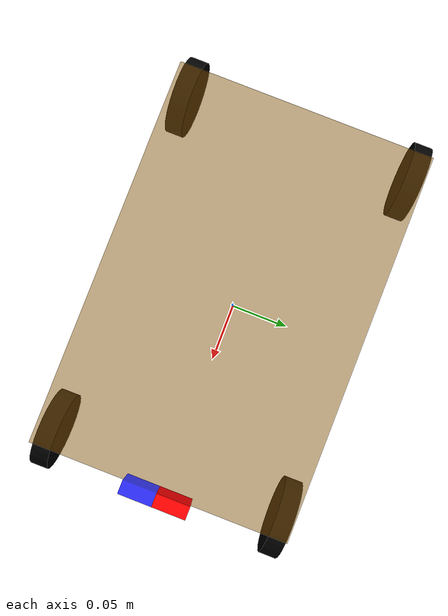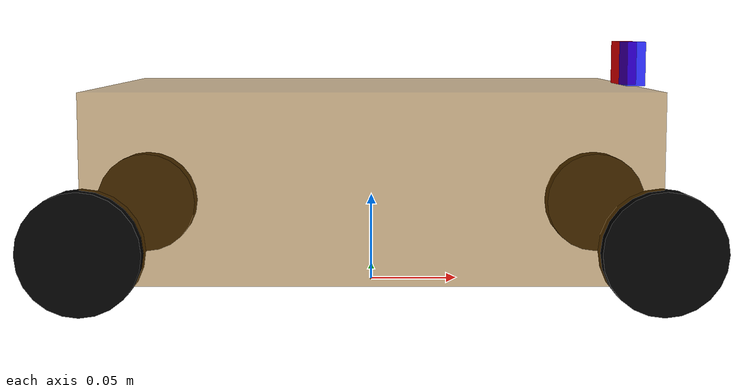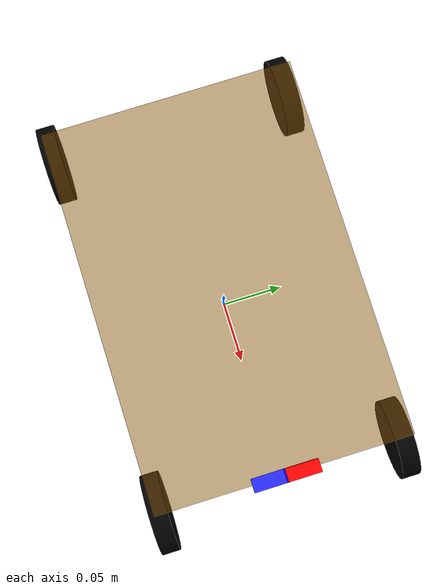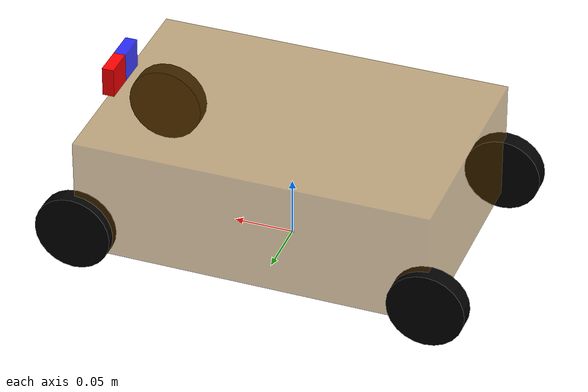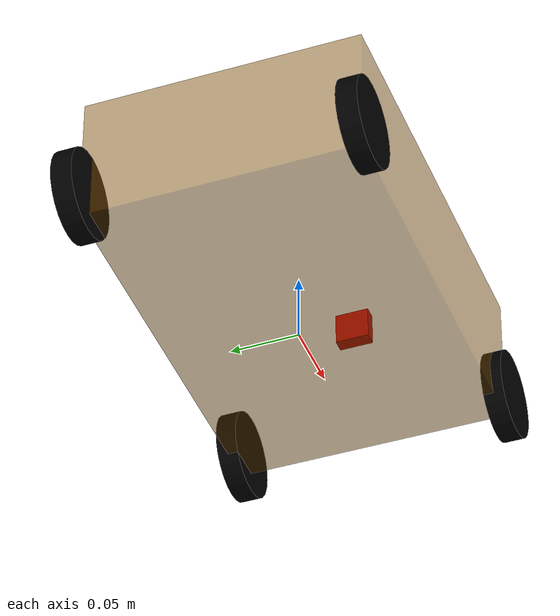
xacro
<?xml version="1.0" ?>
<!-- |    This document was autogenerated by xacro from model.xacro                    | -->
<!-- |    EDITING THIS FILE BY HAND IS NOT RECOMMENDED                                 | -->
<!-- 组合小车底盘与摄像头与雷达 -->
<robot name="my_car_camera">
  <!-- 宏:黑色设置 -->
  <material name="black">
    <color rgba="0.0 0.0 0.0 1.0"/>
  </material>
  <!-- 质量  -->
  <!-- 底盘 -->
  <link name="base_footprint">
    <visual>
      <geometry>
        <sphere radius="0.001"/>
      </geometry>
    </visual>
  </link>
  <link name="base_link">
    <visual>
      <geometry>
        <box size="0.3 0.19999999999999998 0.1"/>
      </geometry>
      <origin rpy="0 0 0" xyz="0 0 0"/>
      <material name="yellow">
        <color rgba="0.5 0.3 0.0 0.5"/>
      </material>
    </visual>
    <collision>
      <geometry>
        <box size="0.3 0.19999999999999998 0.1"/>
      </geometry>
      <origin rpy="0 0 0" xyz="0 0 0"/>
    </collision>
    <inertial>
      <mass value="0.5"/>
      <inertia ixx="0.004166666666666667" ixy="0" ixz="0" iyy="0.005416666666666667" iyz="0" izz="0.0020833333333333333"/>
    </inertial>
  </link>
  <joint name="base_link2base_footprint" type="fixed">
    <parent link="base_footprint"/>
    <child link="base_link"/>
    <origin xyz="0 0 0.065"/>
  </joint>
  <gazebo reference="base_link">
    <material>Gazebo/Gray</material>
  </gazebo>
  <link name="left_back_wheel">
    <visual>
      <geometry>
        <cylinder length="0.015" radius="0.0325"/>
      </geometry>
      <origin rpy="1.5705 0.0 0.0" xyz="0.0 0.0 0.0"/>
      <material name="black">
        <color rgba="0.0 0.0 0.0 0.0"/>
      </material>
    </visual>
    <collision>
      <geometry>
        <cylinder length="0.015" radius="0.0325"/>
      </geometry>
      <origin rpy="1.5705 0.0 0.0" xyz="0.0 0.0 0.0"/>
    </collision>
    <inertial>
      <mass value="0.05"/>
      <inertia ixx="1.4140625000000002e-05" ixy="0" ixz="0" iyy="1.4140625000000002e-05" iyz="0" izz="2.6406250000000005e-05"/>
    </inertial>
  </link>
  <joint name="left_back_wheel2base_link" type="continuous">
    <parent link="base_link"/>
    <child link="left_back_wheel"/>
    <origin xyz="0.15 -0.09999999999999999 -0.0325"/>
    <axis xyz="0 1 0"/>
  </joint>
  <gazebo reference="{name}_wheel">
    <material>Gazebo/Black</material>
  </gazebo>
  <link name="right_back_wheel">
    <visual>
      <geometry>
        <cylinder length="0.015" radius="0.0325"/>
      </geometry>
      <origin rpy="1.5705 0.0 0.0" xyz="0.0 0.0 0.0"/>
      <material name="black">
        <color rgba="0.0 0.0 0.0 0.0"/>
      </material>
    </visual>
    <collision>
      <geometry>
        <cylinder length="0.015" radius="0.0325"/>
      </geometry>
      <origin rpy="1.5705 0.0 0.0" xyz="0.0 0.0 0.0"/>
    </collision>
    <inertial>
      <mass value="0.05"/>
      <inertia ixx="1.4140625000000002e-05" ixy="0" ixz="0" iyy="1.4140625000000002e-05" iyz="0" izz="2.6406250000000005e-05"/>
    </inertial>
  </link>
  <joint name="right_back_wheel2base_link" type="continuous">
    <parent link="base_link"/>
    <child link="right_back_wheel"/>
    <origin xyz="-0.15 -0.09999999999999999 -0.0325"/>
    <axis xyz="0 1 0"/>
  </joint>
  <gazebo reference="{name}_wheel">
    <material>Gazebo/Black</material>
  </gazebo>
  <link name="right_fore_wheel">
    <visual>
      <geometry>
        <cylinder length="0.015" radius="0.0325"/>
      </geometry>
      <origin rpy="1.5705 0.0 0.0" xyz="0.0 0.0 0.0"/>
      <material name="black">
        <color rgba="0.0 0.0 0.0 0.0"/>
      </material>
    </visual>
    <collision>
      <geometry>
        <cylinder length="0.015" radius="0.0325"/>
      </geometry>
      <origin rpy="1.5705 0.0 0.0" xyz="0.0 0.0 0.0"/>
    </collision>
    <inertial>
      <mass value="0.05"/>
      <inertia ixx="1.4140625000000002e-05" ixy="0" ixz="0" iyy="1.4140625000000002e-05" iyz="0" izz="2.6406250000000005e-05"/>
    </inertial>
  </link>
  <joint name="right_fore_wheel2base_link" type="continuous">
    <parent link="base_link"/>
    <child link="right_fore_wheel"/>
    <origin xyz="-0.15 0.09999999999999999 -0.0325"/>
    <axis xyz="0 1 0"/>
  </joint>
  <gazebo reference="{name}_wheel">
    <material>Gazebo/Black</material>
  </gazebo>
  <link name="left_fore_wheel">
    <visual>
      <geometry>
        <cylinder length="0.015" radius="0.0325"/>
      </geometry>
      <origin rpy="1.5705 0.0 0.0" xyz="0.0 0.0 0.0"/>
      <material name="black">
        <color rgba="0.0 0.0 0.0 0.0"/>
      </material>
    </visual>
    <collision>
      <geometry>
        <cylinder length="0.015" radius="0.0325"/>
      </geometry>
      <origin rpy="1.5705 0.0 0.0" xyz="0.0 0.0 0.0"/>
    </collision>
    <inertial>
      <mass value="0.05"/>
      <inertia ixx="1.4140625000000002e-05" ixy="0" ixz="0" iyy="1.4140625000000002e-05" iyz="0" izz="2.6406250000000005e-05"/>
    </inertial>
  </link>
  <joint name="left_fore_wheel2base_link" type="continuous">
    <parent link="base_link"/>
    <child link="left_fore_wheel"/>
    <origin xyz="0.15 0.09999999999999999 -0.0325"/>
    <axis xyz="0 1 0"/>
  </joint>
  <gazebo reference="{name}_wheel">
    <material>Gazebo/Black</material>
  </gazebo>
  <!-- 摄像头质量 -->
  <!-- 摄像头关节以及link -->
  <link name="camera">
    <visual>
      <geometry>
        <box size="0.01 0.025 0.025"/>
      </geometry>
      <origin rpy="0.0 0.0 0.0" xyz="0.0 0.0 0.0"/>
      <material name="blue">
        <color rgba="0 0 1 0.8"/>
      </material>
    </visual>
    <collision>
      <geometry>
        <box size="0.01 0.025 0.025"/>
      </geometry>
      <origin rpy="0.0 0.0 0.0" xyz="0.0 0.0 0.0"/>
    </collision>
    <inertial>
      <mass value="0.01"/>
      <inertia ixx="6.041666666666668e-07" ixy="0" ixz="0" iyy="6.041666666666668e-07" iyz="0" izz="1.041666666666667e-06"/>
    </inertial>
  </link>
  <joint name="camera2base_link" type="fixed">
    <parent link="base_link"/>
    <child link="camera"/>
    <origin xyz="0.15 -0.0125 0.0625"/>
  </joint>
  <gazebo reference="camera">
    <material>Gazebo/Blue</material>
  </gazebo>
  <!-- 摄像头质量 -->
  <!-- 摄像头关节以及link -->
  <link name="depthcamera">
    <visual>
      <geometry>
        <box size="0.01 0.025 0.025"/>
      </geometry>
      <origin rpy="0.0 0.0 0.0" xyz="0.0 0.0 0.0"/>
      <material name="red">
        <color rgba="1.0 0.0 0.0 0.0"/>
      </material>
    </visual>
    <collision>
      <geometry>
        <box size="0.01 0.025 0.025"/>
      </geometry>
      <origin rpy="0.0 0.0 0.0" xyz="0.0 0.0 0.0"/>
    </collision>
    <inertial>
      <mass value="0.01"/>
      <inertia ixx="6.041666666666668e-07" ixy="0" ixz="0" iyy="6.041666666666668e-07" iyz="0" izz="1.041666666666667e-06"/>
    </inertial>
  </link>
  <joint name="depthcamera2base_link" type="fixed">
    <parent link="base_link"/>
    <child link="depthcamera"/>
    <origin xyz="0.15 0.0125 0.0625"/>
  </joint>
  <gazebo reference="depthcamera">
    <material>Gazebo/Red</material>
  </gazebo>
  <!-- Transmission is important to link the joints and the controller -->
  <transmission name="left_back_wheel2base_link_trans">
    <type>transmission_interface/SimpleTransmission</type>
    <joint name="left_back_wheel2base_link">
      <hardwareInterface>hardware_interface/VelocityJointInterface</hardwareInterface>
    </joint>
    <actuator name="left_back_wheel2base_link_motor">
      <hardwareInterface>hardware_interface/VelocityJointInterface</hardwareInterface>
      <mechanicalReduction>1</mechanicalReduction>
    </actuator>
  </transmission>
  <!-- Transmission is important to link the joints and the controller -->
  <transmission name="right_back_wheel2base_link_trans">
    <type>transmission_interface/SimpleTransmission</type>
    <joint name="right_back_wheel2base_link">
      <hardwareInterface>hardware_interface/VelocityJointInterface</hardwareInterface>
    </joint>
    <actuator name="right_back_wheel2base_link_motor">
      <hardwareInterface>hardware_interface/VelocityJointInterface</hardwareInterface>
      <mechanicalReduction>1</mechanicalReduction>
    </actuator>
  </transmission>
  <!-- 控制器 -->
  <gazebo>
    <plugin filename="libgazebo_ros_diff_drive.so" name="differential_drive_controller">
      <rosDebugLevel>Debug</rosDebugLevel>
      <publishWheelTF>true</publishWheelTF>
      <robotNamespace>/</robotNamespace>
      <publishTf>1</publishTf>
      <publishWheelJointState>true</publishWheelJointState>
      <alwaysOn>true</alwaysOn>
      <updateRate>100.0</updateRate>
      <legacyMode>true</legacyMode>
      <leftJoint>left_back_wheel2base_link</leftJoint>
      <!-- 左轮 -->
      <rightJoint>right_back_wheel2base_link</rightJoint>
      <!-- 右轮 -->
      <wheelSeparation>0.19999999999999998</wheelSeparation>
      <!-- 车轮间距 -->
      <wheelDiameter>0.065</wheelDiameter>
      <!-- 车轮直径 -->
      <broadcastTF>1</broadcastTF>
      <wheelTorque>30</wheelTorque>
      <wheelAcceleration>1.8</wheelAcceleration>
      <commandTopic>cmd_vel</commandTopic>
      <!-- 运动控制话题 -->
      <odometryFrame>odom</odometryFrame>
      <odometryTopic>odom</odometryTopic>
      <!-- 里程计话题 -->
      <robotBaseFrame>base_footprint</robotBaseFrame>
      <!-- 根坐标系 -->
    </plugin>
  </gazebo>
</robot>
